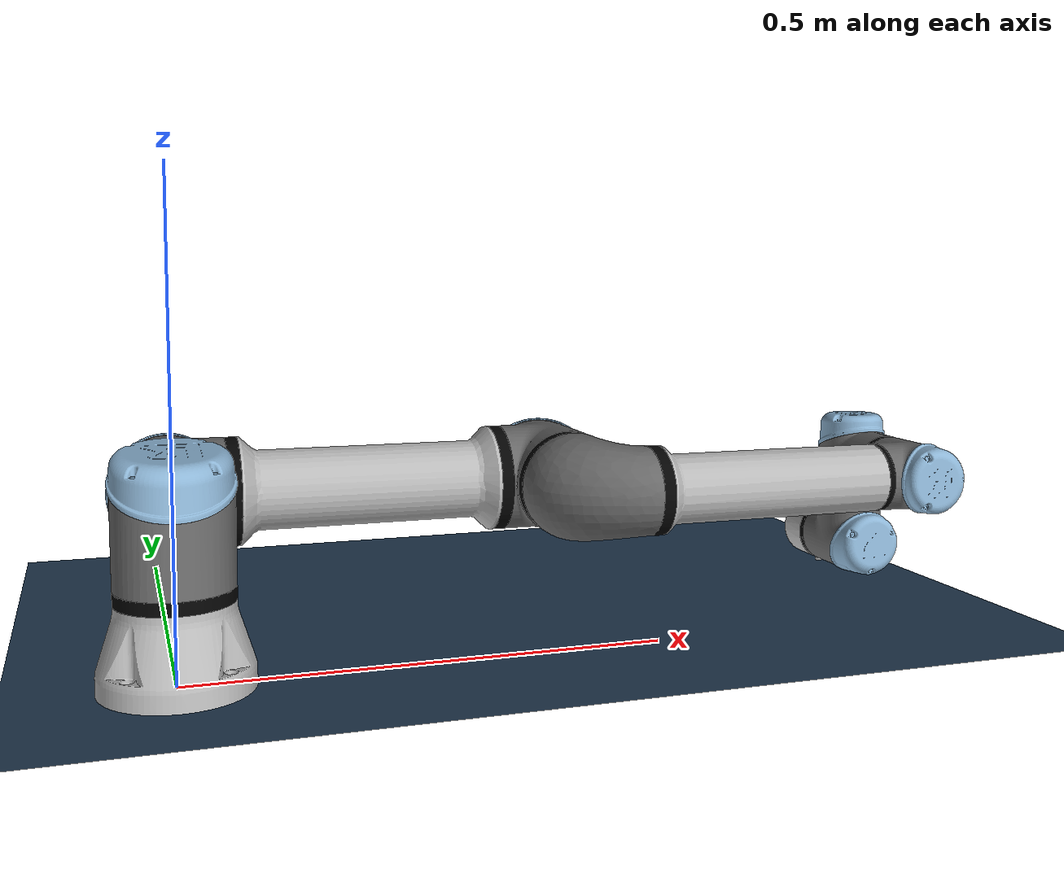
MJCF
<mujoco model="ur5e_robot">
  <compiler angle="radian" meshdir="../../stl_files/Meshes_ur5e/" autolimits="true"/>
  <statistic meansize="0.227096" extent="1.07125" center="0.381442 0.227296 0.162489"/>

  <visual>
    <headlight diffuse="0.6 0.6 0.6" ambient="0.3 0.3 0.3" specular="0 0 0"/>
    <rgba haze="0.15 0.25 0.35 1"/>
    <global azimuth="120" elevation="-20"/>
  </visual>

  <default>
	<include file="./ur5e_robot_default.xml"/>
  </default>

  <asset>
    <texture type="skybox" builtin="gradient" rgb1="0.3 0.5 0.7" rgb2="0 0 0" width="512" height="3072"/>
    <texture type="2d" name="groundplane" builtin="checker" mark="edge" rgb1="0.2 0.3 0.4" rgb2="0.1 0.2 0.3"
      markrgb="0.8 0.8 0.8" width="300" height="300"/>
    <material name="groundplane" texture="groundplane" texuniform="true" texrepeat="5 5" reflectance="0.2"/>
  </asset>

  <asset>
    <mesh name="ur5e-link0_con" file="ur5e-link0_con.stl"/>
    <mesh name="ur5e-link0_rod" file="ur5e-link0_rod.stl"/>
    <mesh name="collision_base" file="collision_base.stl"/>
    <mesh name="ur5e-link1_cap" file="ur5e-link1_cap.stl"/>
    <mesh name="ur5e-link1_con" file="ur5e-link1_con.stl"/>
    <mesh name="ur5e-link1_joi" file="ur5e-link1_joi.stl"/>
    <mesh name="collision_shoulder" file="collision_shoulder.stl"/>
    <mesh name="ur5e-link2_cap1" file="ur5e-link2_cap1.stl"/>
    <mesh name="ur5e-link2_cap2" file="ur5e-link2_cap2.stl"/>
    <mesh name="ur5e-link2_con1" file="ur5e-link2_con1.stl"/>
    <mesh name="ur5e-link2_con2" file="ur5e-link2_con2.stl"/>
    <mesh name="ur5e-link2_con3" file="ur5e-link2_con3.stl"/>
    <mesh name="ur5e-link2_joi1" file="ur5e-link2_joi1.stl"/>
    <mesh name="ur5e-link2_joi2" file="ur5e-link2_joi2.stl"/>
    <mesh name="ur5e-link2_rod" file="ur5e-link2_rod.stl"/>
    <mesh name="collision_upperarm" file="collision_upperarm.stl"/>
    <mesh name="ur5e-link3_cap" file="ur5e-link3_cap.stl"/>
    <mesh name="ur5e-link3_con1" file="ur5e-link3_con1.stl"/>
    <mesh name="ur5e-link3_con2" file="ur5e-link3_con2.stl"/>
    <mesh name="ur5e-link3_con3" file="ur5e-link3_con3.stl"/>
    <mesh name="ur5e-link3_joi1" file="ur5e-link3_joi1.stl"/>
    <mesh name="ur5e-link3_joi2" file="ur5e-link3_joi2.stl"/>
    <mesh name="ur5e-link3_rod" file="ur5e-link3_rod.stl"/>
    <mesh name="collision_forearm" file="collision_forearm.stl"/>
    <mesh name="ur5e-link4_cap" file="ur5e-link4_cap.stl"/>
    <mesh name="ur5e-link4_con" file="ur5e-link4_con.stl"/>
    <mesh name="ur5e-link4_joi" file="ur5e-link4_joi.stl"/>
    <mesh name="collision_wrist1" file="collision_wrist1.stl"/>
    <mesh name="ur5e-link5_cap" file="ur5e-link5_cap.stl"/>
    <mesh name="ur5e-link5_con" file="ur5e-link5_con.stl"/>
    <mesh name="ur5e-link5_joi" file="ur5e-link5_joi.stl"/>
    <mesh name="collision_wrist2" file="collision_wrist2.stl"/>
    <mesh name="ur5e-link6_rod" file="ur5e-link6_rod.stl"/>
    <mesh name="collision_wrist3" file="collision_wrist3.stl"/>
  </asset>

  <worldbody>
     <light pos="0 0 1.5" dir="0 0 -1" directional="true"/>
    <geom name="floor" size="0 0 0.05" pos="0 0 0" quat="0 0 0 1" type="plane"  material="groundplane"/>
    <geom type="mesh" class="visual" contype="0" conaffinity="0" density="0" rgba="0.0157 0.0157 0.0157 1" mesh="ur5e-link0_con"/>
    <geom type="mesh" class="visual" contype="0" conaffinity="0" density="0" rgba="0.7255 0.7255 0.7255 1" mesh="ur5e-link0_rod"/>
    <geom type="mesh" class="collision" rgba="0.7255 0.7255 0.7255 1" mesh="collision_base"/>
    <body name="ur5e_link1" pos="0 0 0.1625">
      <inertial pos="0 0 0" mass="3.7" diaginertia="0.0102675 0.0102675 0.00666"/>
      <joint name="ur5e_joint1" pos="0 0 0" axis="0 0 1" range="-6.28319 6.28319"/>
      <geom type="mesh" class="visual" contype="0" conaffinity="0" density="0" rgba="0.5529 0.7098 0.8353 1" mesh="ur5e-link1_cap"/>
      <geom type="mesh" class="visual" contype="0" conaffinity="0" density="0" rgba="0.0157 0.0157 0.0157 1" mesh="ur5e-link1_con"/>
      <geom type="mesh" class="visual" contype="0" conaffinity="0" density="0" rgba="0.4078 0.4078 0.4078 1" mesh="ur5e-link1_joi"/>
      <geom type="mesh" class="collision" rgba="0.4078 0.4078 0.4078 1" mesh="collision_shoulder"/>
      <body name="ur5e_link2" pos="0 0.138 0" quat="0.707107 0 0.707107 0">
        <inertial pos="0 0 0.2125" mass="8.393" diaginertia="0.133886 0.133886 0.0151074"/>
        <joint name="ur5e_joint2" pos="0 0 0" axis="0 1 0" range="-6.28319 6.28319"/>
        <geom type="mesh" class="visual" contype="0" conaffinity="0" density="0" rgba="0.5529 0.7098 0.8353 1" mesh="ur5e-link2_cap1"/>
        <geom type="mesh" class="visual" contype="0" conaffinity="0" density="0" rgba="0.5529 0.7098 0.8353 1" mesh="ur5e-link2_cap2"/>
        <geom type="mesh" class="visual" contype="0" conaffinity="0" density="0" rgba="0.0157 0.0157 0.0157 1" mesh="ur5e-link2_con1"/>
        <geom type="mesh" class="visual" contype="0" conaffinity="0" density="0" rgba="0.0157 0.0157 0.0157 1" mesh="ur5e-link2_con2"/>
        <geom type="mesh" class="visual" contype="0" conaffinity="0" density="0" rgba="0.0157 0.0157 0.0157 1" mesh="ur5e-link2_con3"/>
        <geom type="mesh" class="visual" contype="0" conaffinity="0" density="0" rgba="0.4078 0.4078 0.4078 1" mesh="ur5e-link2_joi1"/>
        <geom type="mesh" class="visual" contype="0" conaffinity="0" density="0" rgba="0.4078 0.4078 0.4078 1" mesh="ur5e-link2_joi2"/>
        <geom type="mesh" class="visual" contype="0" conaffinity="0" density="0" rgba="0.7255 0.7255 0.7255 1" mesh="ur5e-link2_rod"/>
        <geom type="mesh" class="collision" rgba="0.7255 0.7255 0.7255 1" mesh="collision_upperarm"/>
        <body name="ur5e_link3" pos="0 -0.131 0.425">
          <inertial pos="0 0 0.196" mass="2.275" diaginertia="0.0311796 0.0311796 0.004095"/>
          <joint name="ur5e_joint3" pos="0 0 0" axis="0 1 0" range="-6.28319 6.28319"/>
          <geom type="mesh" class="visual" contype="0" conaffinity="0" density="0" rgba="0.5529 0.7098 0.8353 1" mesh="ur5e-link3_cap"/>
          <geom type="mesh" class="visual" contype="0" conaffinity="0" density="0" rgba="0.0157 0.0157 0.0157 1" mesh="ur5e-link3_con1"/>
          <geom type="mesh" class="visual" contype="0" conaffinity="0" density="0" rgba="0.0157 0.0157 0.0157 1" mesh="ur5e-link3_con2"/>
          <geom type="mesh" class="visual" contype="0" conaffinity="0" density="0" rgba="0.0157 0.0157 0.0157 1" mesh="ur5e-link3_con3"/>
          <geom type="mesh" class="visual" contype="0" conaffinity="0" density="0" rgba="0.4078 0.4078 0.4078 1" mesh="ur5e-link3_joi1"/>
          <geom type="mesh" class="visual" contype="0" conaffinity="0" density="0" rgba="0.4078 0.4078 0.4078 1" mesh="ur5e-link3_joi2"/>
          <geom type="mesh" class="visual" contype="0" conaffinity="0" density="0" rgba="0.7255 0.7255 0.7255 1" mesh="ur5e-link3_rod"/>
          <geom type="mesh" class="collision" rgba="0.7255 0.7255 0.7255 1" mesh="collision_forearm"/>
          <body name="ur5e_link4" pos="0 0 0.392" quat="0.707107 0 0.707107 0">
            <inertial pos="0 0.127 0" mass="1.219" diaginertia="0.0025599 0.0025599 0.0021942"/>
            <joint name="ur5e_joint4" pos="0 0 0" axis="0 1 0" range="-6.28319 6.28319"/>
            <geom type="mesh" class="visual" contype="0" conaffinity="0" density="0" rgba="0.5529 0.7098 0.8353 1" mesh="ur5e-link4_cap"/>
            <geom type="mesh" class="visual" contype="0" conaffinity="0" density="0" rgba="0.0157 0.0157 0.0157 1" mesh="ur5e-link4_con"/>
            <geom type="mesh" class="visual" contype="0" conaffinity="0" density="0" rgba="0.4078 0.4078 0.4078 1" mesh="ur5e-link4_joi"/>
            <geom type="mesh" class="collision" rgba="0.4078 0.4078 0.4078 1" mesh="collision_wrist1"/>
            <body name="ur5e_link5" pos="0 0.127 0">
              <inertial pos="0 0 0.1" mass="1.219" diaginertia="0.0025599 0.0025599 0.0021942"/>
              <joint name="ur5e_joint5" pos="0 0 0" axis="0 0 1" range="-6.28319 6.28319"/>
              <geom type="mesh" class="visual" contype="0" conaffinity="0" density="0" rgba="0.5529 0.7098 0.8353 1" mesh="ur5e-link5_cap"/>
              <geom type="mesh" class="visual" contype="0" conaffinity="0" density="0" rgba="0.0157 0.0157 0.0157 1" mesh="ur5e-link5_con"/>
              <geom type="mesh" class="visual" contype="0" conaffinity="0" density="0" rgba="0.4078 0.4078 0.4078 1" mesh="ur5e-link5_joi"/>
              <geom type="mesh" class="collision" rgba="0.4078 0.4078 0.4078 1" mesh="collision_wrist2"/>
              <body name="ur5e_link6" pos="0 0 0.1">
                <inertial pos="0 0.0850542 0" quat="0.707107 0.707107 0 0" mass="0.2879" diaginertia="0.0301331 0.0301331 0.0301321"/>
                <joint name="ur5e_joint6" pos="0 0 0" axis="0 1 0" range="-6.28319 6.28319"/>
                <geom type="mesh" class="visual" contype="0" conaffinity="0" density="0" rgba="0.7255 0.7255 0.7255 1" mesh="ur5e-link6_rod"/>
                <geom type="mesh" class="collision" rgba="0.7255 0.7255 0.7255 1" mesh="collision_wrist3"/>
                <geom size="0.005 0.005 0.005" pos="0 0.09 0" quat="0.707107 0 0 0.707107" type="box"/>
              </body>
            </body>
          </body>
        </body>
      </body>
    </body>
  </worldbody>

</mujoco>

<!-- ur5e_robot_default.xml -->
<mujoco model="ur5e_robot_default">
    <default class="fr3">
        <material specular="0.5" shininess="0.25"/>

        <default class="visual">
            <geom type="mesh" contype="0" conaffinity="0" group="2"/>
        </default>

        <default class="collision">
            <geom type="mesh" group="3"/>
        </default>
    </default>
</mujoco>
